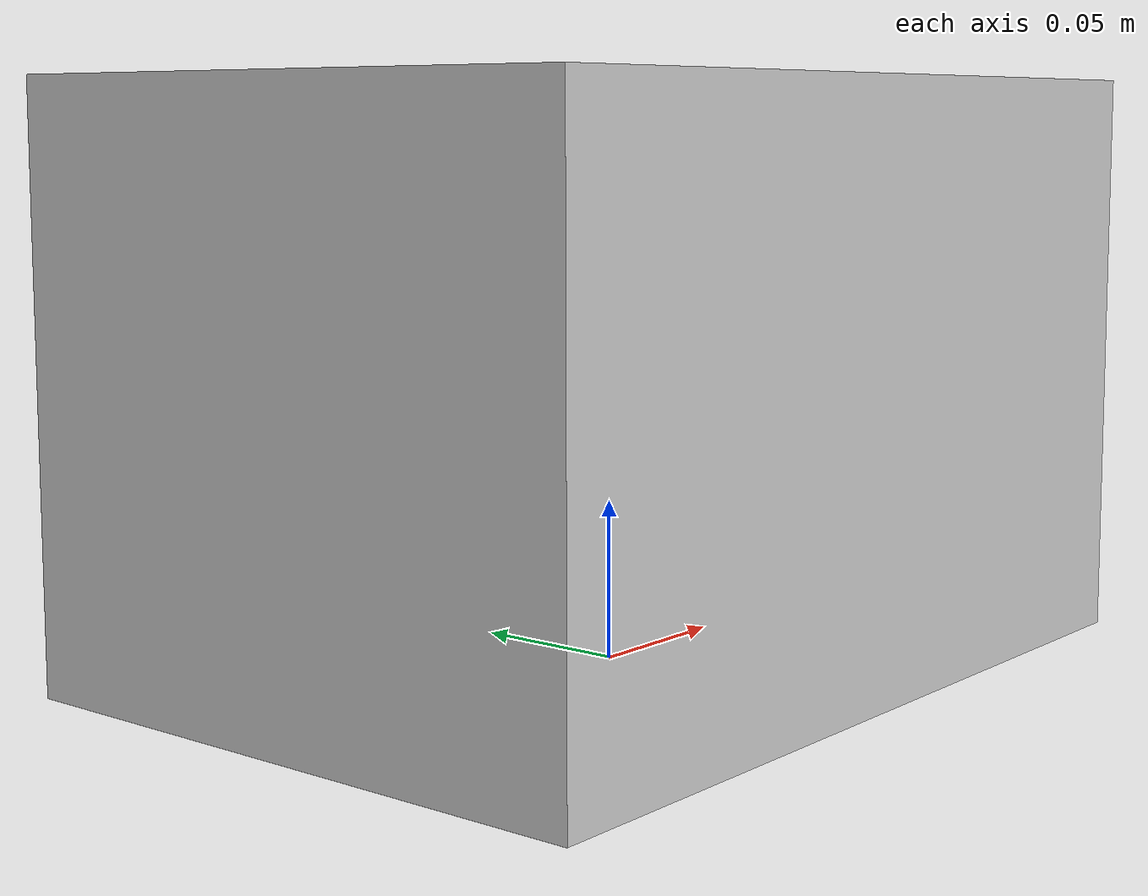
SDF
<?xml version="1.0" ?>
<sdf version="1.6">
  <model name="C">
    <pose>0 0 0.15 0 0 0</pose>
    <link name="link">
      <inertial>
        <mass>100</mass>
        <inertia>
          <ixx>0.041666667</ixx>
          <ixy>0</ixy>
          <ixz>0</ixz>
          <iyy>0.056666667</iyy>
          <iyz>0</iyz>
          <izz>0.068333333</izz>
        </inertia>
      </inertial>
      <collision name="collision">
        <geometry>
          <box>
            <size>0.3 0.2 0.2</size>
          </box>
        </geometry>
        <surface>
          <friction>
            <ode>
              <mu>1.0</mu>
              <mu2>1.0</mu2>
            </ode>
          </friction>
          <contact>
            <ode>
              <kp>10000000.0</kp>
              <kd>1.0</kd>
              <min_depth>0.001</min_depth>
              <max_vel>0.1</max_vel>
            </ode>
          </contact>
        </surface>
      </collision>
      <visual name="visual">
        <pose>0 0 -0.15 0 0 0</pose>
        <geometry>
          <mesh>
            <uri>model://C/meshes/C.dae</uri>
            <scale>0.7 0.5 0.455591376</scale>
          </mesh>
        </geometry>
      </visual>
    </link>
  </model>
</sdf>
